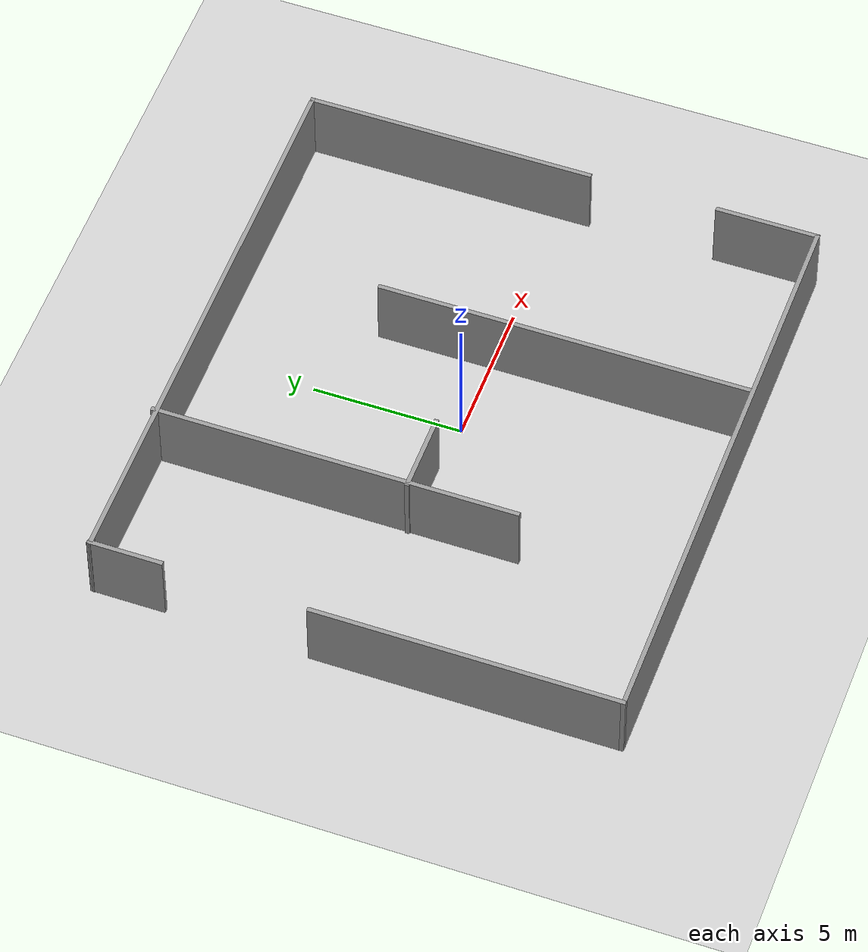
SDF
<sdf version="1.6">
 <world name="default">
  <light name="sun" type="directional">
   <pose>0 0 10 0 -0 0</pose>
   <diffuse>0.8 0.8 0.8 1</diffuse>
   <specular>0.2 0.2 0.2 1</specular>
   <attenuation>
    <range>1000</range>
    <constant>0.9</constant>
    <linear>0.01</linear>
    <quadratic>0.001</quadratic>
   </attenuation>
   <direction>-0.5 0.1 -0.9</direction>
  </light>
  <model name="ground_plane">
   <static>1</static>
   <link name="link">
    <collision name="collision">
     <geometry><plane><normal>0 0 1</normal><size>100 100</size></plane></geometry>
     <surface>
      <contact><collide_bitmask>65535</collide_bitmask></contact>
      <friction><ode><mu>100</mu><mu2>50</mu2></ode></friction>
     </surface>
    </collision>
    <visual name="visual">
     <cast_shadows>0</cast_shadows>
     <geometry><plane><normal>0 0 1</normal><size>100 100</size></plane></geometry>
     <material>
      <script><uri>file://media/materials/scripts/gazebo.material</uri><name>Gazebo/Grey</name></script>
     </material>
    </visual>
   </link>
  </model>
  <gravity>0 0 -9.8</gravity>
  <magnetic_field>6e-06 2.3e-05 -4.2e-05</magnetic_field>
  <atmosphere type="adiabatic"/>
  <physics name="default_physics" default="0" type="ode">
   <gravity>0 0 -9.8066</gravity>
   <ode>
    <solver>
     <type>quick</type>
     <iters>10</iters>
     <sor>1.3</sor>
     <use_dynamic_moi_rescaling>0</use_dynamic_moi_rescaling>
    </solver>
    <constraints>
     <cfm>0</cfm>
     <erp>0.2</erp>
     <contact_max_correcting_vel>100</contact_max_correcting_vel>
     <contact_surface_layer>0.001</contact_surface_layer>
    </constraints>
   </ode>
   <max_step_size>0.004</max_step_size>
   <real_time_factor>1</real_time_factor>
   <real_time_update_rate>250</real_time_update_rate>
   <magnetic_field>6.0e-6 2.3e-5 -4.2e-5</magnetic_field>
  </physics>
  <scene><ambient>0.4 0.4 0.4 1</ambient><background>0.7 0.7 0.7 1</background><shadows>1</shadows></scene>
  <spherical_coordinates>
   <surface_model>EARTH_WGS84</surface_model>
   <latitude_deg>0</latitude_deg>
   <longitude_deg>0</longitude_deg>
   <elevation>0</elevation>
   <heading_deg>0</heading_deg>
  </spherical_coordinates>
  <model name="test1">
   <pose>-0.115821 0.007043 0 0 -0 0</pose>
   <link name="Wall_10">
    <collision name="Wall_10_Collision">
     <geometry><box><size>10.25 0.15 2.5</size></box></geometry>
     <pose>0 0 1.25 0 -0 0</pose>
    </collision>
    <visual name="Wall_10_Visual">
     <pose>0 0 1.25 0 -0 0</pose>
     <geometry><box><size>10.25 0.15 2.5</size></box></geometry>
     <material>
      <script><uri>file://media/materials/scripts/gazebo.material</uri><name>Gazebo/Grey</name></script>
      <ambient>1 1 1 1</ambient>
     </material>
     <meta><layer>0</layer></meta>
    </visual>
    <pose>-9.675 -3.67595 0 0 -0 1.5708</pose>
   </link>
   <link name="Wall_12">
    <collision name="Wall_12_Collision">
     <geometry><box><size>0.25 0.15 2.5</size></box></geometry>
     <pose>0 0 1.25 0 -0 0</pose>
    </collision>
    <visual name="Wall_12_Visual">
     <pose>0 0 1.25 0 -0 0</pose>
     <geometry><box><size>0.25 0.15 2.5</size></box></geometry>
     <material>
      <script><uri>file://media/materials/scripts/gazebo.material</uri><name>Gazebo/Grey</name></script>
      <ambient>1 1 1 1</ambient>
     </material>
     <meta><layer>0</layer></meta>
    </visual>
    <pose>-9.52434 8.62941 0 0 -0 2.87979</pose>
   </link>
   <link name="Wall_13">
    <collision name="Wall_13_Collision">
     <geometry><box><size>2.5 0.15 2.5</size></box></geometry>
     <pose>0 0 1.25 0 -0 0</pose>
    </collision>
    <visual name="Wall_13_Visual">
     <pose>0 0 1.25 0 -0 0</pose>
     <geometry><box><size>2.5 0.15 2.5</size></box></geometry>
     <material>
      <script><uri>file://media/materials/scripts/gazebo.material</uri><name>Gazebo/Grey</name></script>
      <ambient>1 1 1 1</ambient>
     </material>
     <meta><layer>0</layer></meta>
    </visual>
    <pose>-9.57264 7.46735 0 0 -0 -1.5708</pose>
   </link>
   <link name="Wall_15">
    <collision name="Wall_15_Collision">
     <geometry><box><size>12.25 0.15 2.5</size></box></geometry>
     <pose>0 0 1.25 0 -0 0</pose>
    </collision>
    <visual name="Wall_15_Visual">
     <pose>0 0 1.25 0 -0 0</pose>
     <geometry><box><size>12.25 0.15 2.5</size></box></geometry>
     <material>
      <script><uri>file://media/materials/scripts/gazebo.material</uri><name>Gazebo/Grey</name></script>
      <ambient>1 1 1 1</ambient>
     </material>
     <meta><layer>0</layer></meta>
    </visual>
    <pose>-4.09801 2.67595 0 0 -0 -1.5708</pose>
   </link>
   <link name="Wall_18">
    <collision name="Wall_18_Collision">
     <geometry><box><size>12.5 0.15 2.5</size></box></geometry>
     <pose>0 0 1.25 0 -0 0</pose>
    </collision>
    <visual name="Wall_18_Visual">
     <pose>0 0 1.25 0 -0 0</pose>
     <geometry><box><size>12.5 0.15 2.5</size></box></geometry>
     <material>
      <script><uri>file://media/materials/scripts/gazebo.material</uri><name>Gazebo/Grey</name></script>
      <ambient>1 1 1 1</ambient>
     </material>
     <meta><layer>0</layer></meta>
    </visual>
    <pose>2.95136 -2.41684 0 0 -0 1.5708</pose>
   </link>
   <link name="Wall_20">
    <collision name="Wall_20_Collision">
     <geometry><box><size>2.75 0.15 2.5</size></box></geometry>
     <pose>0 0 1.25 0 -0 0</pose>
    </collision>
    <visual name="Wall_20_Visual">
     <pose>0 0 1.25 0 -0 0</pose>
     <geometry><box><size>2.75 0.15 2.5</size></box></geometry>
     <material>
      <script><uri>file://media/materials/scripts/gazebo.material</uri><name>Gazebo/Grey</name></script>
      <ambient>1 1 1 1</ambient>
     </material>
     <meta><layer>0</layer></meta>
    </visual>
    <pose>-2.85835 0.228398 0 0 -0 0</pose>
   </link>
   <link name="Wall_3">
    <collision name="Wall_3_Collision">
     <geometry><box><size>19.25 0.15 2.5</size></box></geometry>
     <pose>0 0 1.25 0 -0 0</pose>
    </collision>
    <visual name="Wall_3_Visual">
     <pose>0 0 1.25 0 -0 0</pose>
     <geometry><box><size>19.25 0.15 2.5</size></box></geometry>
     <material>
      <script><uri>file://media/materials/scripts/gazebo.material</uri><name>Gazebo/Grey</name></script>
      <ambient>1 1 1 1</ambient>
     </material>
     <meta><layer>0</layer></meta>
    </visual>
    <pose>0.073954 8.61647 0 0 -0 0</pose>
   </link>
   <link name="Wall_4">
    <collision name="Wall_4_Collision">
     <geometry><box><size>9.75 0.15 2.5</size></box></geometry>
     <pose>0 0 1.25 0 -0 0</pose>
    </collision>
    <visual name="Wall_4_Visual">
     <pose>0 0 1.25 0 -0 0</pose>
     <geometry><box><size>9.75 0.15 2.5</size></box></geometry>
     <material>
      <script><uri>file://media/materials/scripts/gazebo.material</uri><name>Gazebo/Grey</name></script>
      <ambient>1 1 1 1</ambient>
     </material>
     <meta><layer>0</layer></meta>
    </visual>
    <pose>9.62395 3.81647 0 0 -0 -1.5708</pose>
   </link>
   <link name="Wall_8">
    <collision name="Wall_8_Collision">
     <geometry><box><size>3.5 0.15 2.5</size></box></geometry>
     <pose>0 0 1.25 0 -0 0</pose>
    </collision>
    <visual name="Wall_8_Visual">
     <pose>0 0 1.25 0 -0 0</pose>
     <geometry><box><size>3.5 0.15 2.5</size></box></geometry>
     <material>
      <script><uri>file://media/materials/scripts/gazebo.material</uri><name>Gazebo/Grey</name></script>
      <ambient>1 1 1 1</ambient>
     </material>
     <meta><layer>0</layer></meta>
    </visual>
    <pose>9.675 -7.05095 0 0 -0 -1.5708</pose>
   </link>
   <link name="Wall_9">
    <collision name="Wall_9_Collision">
     <geometry><box><size>19.5 0.15 2.5</size></box></geometry>
     <pose>0 0 1.25 0 -0 0</pose>
    </collision>
    <visual name="Wall_9_Visual">
     <pose>0 0 1.25 0 -0 0</pose>
     <geometry><box><size>19.5 0.15 2.5</size></box></geometry>
     <material>
      <script><uri>file://media/materials/scripts/gazebo.material</uri><name>Gazebo/Grey</name></script>
      <ambient>1 1 1 1</ambient>
     </material>
     <meta><layer>0</layer></meta>
    </visual>
    <pose>0 -8.72594 0 0 -0 3.14159</pose>
   </link>
   <static>1</static>
  </model>
 </world>
</sdf>
